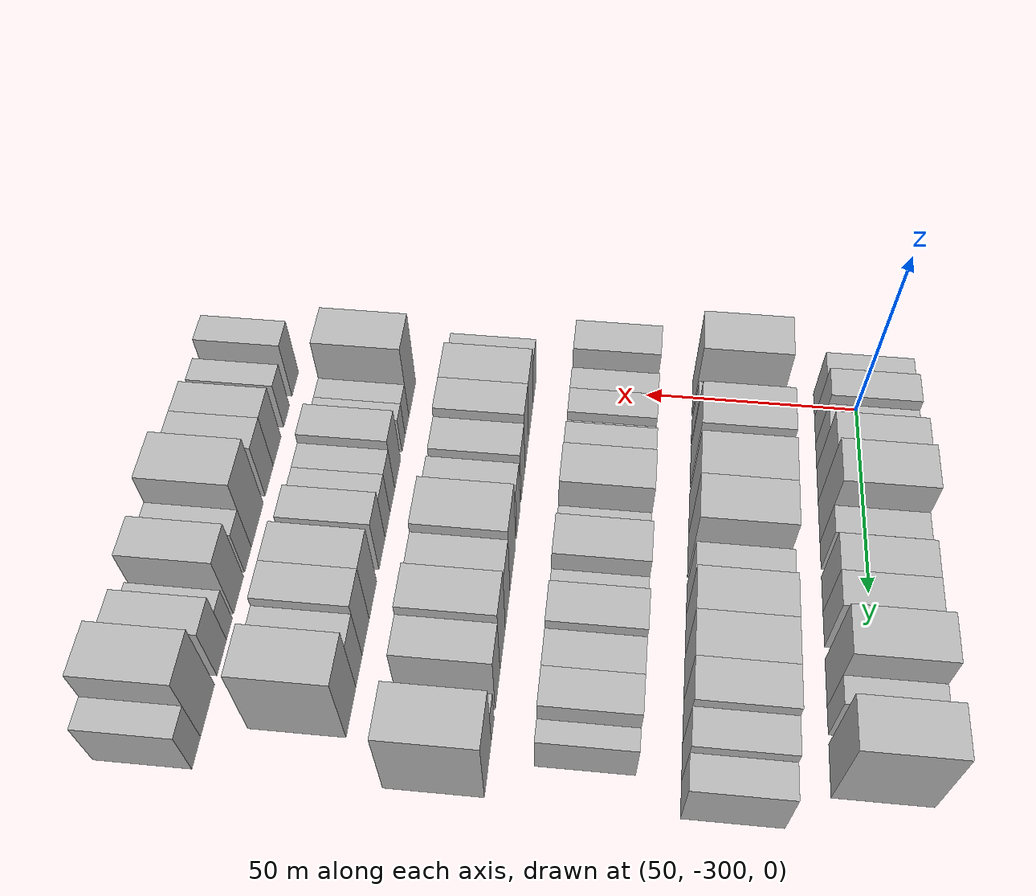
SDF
<sdf version="1.6">
 <world name="default">
  <model name="building_25">
   <static>1</static>
   <pose>50.0000 -300.6534 0 0.000000 0.000000 0.000000</pose>
   <link name="link">
    <pose>0 0 7.50 0 0 0</pose>
    <collision name="collision"><geometry><box><size>20.0000 7.2595 15.0000</size></box></geometry></collision>
    <visual name="visual">
     <cast_shadows>0</cast_shadows>
     <geometry><box><size>20.0000 7.2595 15.0000</size></box></geometry>
     <material>
      <script>
       <uri>model://HANNAS_wall/materials/scripts</uri>
       <uri>model://HANNAS_wall/materials/textures</uri>
       <name>vrc/HANNAS_wall</name>
      </script>
     </material>
    </visual>
   </link>
  </model>
  <model name="building_26">
   <static>1</static>
   <pose>50.0000 -293.0903 0 0.000000 0.000000 0.000000</pose>
   <link name="link">
    <pose>0 0 9.00 0 0 0</pose>
    <collision name="collision"><geometry><box><size>20.0000 7.8667 18.0000</size></box></geometry></collision>
    <visual name="visual">
     <cast_shadows>0</cast_shadows>
     <geometry><box><size>20.0000 7.8667 18.0000</size></box></geometry>
     <material>
      <script>
       <uri>model://HANNAS_wall/materials/scripts</uri>
       <uri>model://HANNAS_wall/materials/textures</uri>
       <name>vrc/HANNAS_wall</name>
      </script>
     </material>
    </visual>
   </link>
  </model>
  <model name="building_27">
   <static>1</static>
   <pose>50.0000 -285.7078 0 0.000000 0.000000 0.000000</pose>
   <link name="link">
    <pose>0 0 7.50 0 0 0</pose>
    <collision name="collision"><geometry><box><size>20.0000 6.8984 15.0000</size></box></geometry></collision>
    <visual name="visual">
     <cast_shadows>0</cast_shadows>
     <geometry><box><size>20.0000 6.8984 15.0000</size></box></geometry>
     <material>
      <script>
       <uri>model://HANNAS_wall/materials/scripts</uri>
       <uri>model://HANNAS_wall/materials/textures</uri>
       <name>vrc/HANNAS_wall</name>
      </script>
     </material>
    </visual>
   </link>
  </model>
  <model name="building_28">
   <static>1</static>
   <pose>50.0000 -277.4978 0 0.000000 0.000000 0.000000</pose>
   <link name="link">
    <pose>0 0 10.50 0 0 0</pose>
    <collision name="collision"><geometry><box><size>20.0000 9.5215 21.0000</size></box></geometry></collision>
    <visual name="visual">
     <cast_shadows>0</cast_shadows>
     <geometry><box><size>20.0000 9.5215 21.0000</size></box></geometry>
     <material>
      <script>
       <uri>model://HANNAS_wall/materials/scripts</uri>
       <uri>model://HANNAS_wall/materials/textures</uri>
       <name>vrc/HANNAS_wall</name>
      </script>
     </material>
    </visual>
   </link>
  </model>
  <model name="building_29">
   <static>1</static>
   <pose>50.0000 -267.2478 0 0.000000 0.000000 0.000000</pose>
   <link name="link">
    <pose>0 0 12.00 0 0 0</pose>
    <collision name="collision"><geometry><box><size>20.0000 10.9785 24.0000</size></box></geometry></collision>
    <visual name="visual">
     <cast_shadows>0</cast_shadows>
     <geometry><box><size>20.0000 10.9785 24.0000</size></box></geometry>
     <material>
      <script>
       <uri>model://HANNAS_wall/materials/scripts</uri>
       <uri>model://HANNAS_wall/materials/textures</uri>
       <name>vrc/HANNAS_wall</name>
      </script>
     </material>
    </visual>
   </link>
  </model>
  <model name="building_30">
   <static>1</static>
   <pose>50.0000 -258.3885 0 0.000000 0.000000 0.000000</pose>
   <link name="link">
    <pose>0 0 7.50 0 0 0</pose>
    <collision name="collision"><geometry><box><size>20.0000 6.7401 15.0000</size></box></geometry></collision>
    <visual name="visual">
     <cast_shadows>0</cast_shadows>
     <geometry><box><size>20.0000 6.7401 15.0000</size></box></geometry>
     <material>
      <script>
       <uri>model://HANNAS_wall/materials/scripts</uri>
       <uri>model://HANNAS_wall/materials/textures</uri>
       <name>vrc/HANNAS_wall</name>
      </script>
     </material>
    </visual>
   </link>
  </model>
  <model name="building_31">
   <static>1</static>
   <pose>50.0000 -248.5982 0 0.000000 0.000000 0.000000</pose>
   <link name="link">
    <pose>0 0 9.00 0 0 0</pose>
    <collision name="collision"><geometry><box><size>20.0000 8.8404 18.0000</size></box></geometry></collision>
    <visual name="visual">
     <cast_shadows>0</cast_shadows>
     <geometry><box><size>20.0000 8.8404 18.0000</size></box></geometry>
     <material>
      <script>
       <uri>model://HANNAS_wall/materials/scripts</uri>
       <uri>model://HANNAS_wall/materials/textures</uri>
       <name>vrc/HANNAS_wall</name>
      </script>
     </material>
    </visual>
   </link>
  </model>
  <model name="building_32">
   <static>1</static>
   <pose>50.0000 -240.0793 0 0.000000 0.000000 0.000000</pose>
   <link name="link">
    <pose>0 0 9.00 0 0 0</pose>
    <collision name="collision"><geometry><box><size>20.0000 8.1975 18.0000</size></box></geometry></collision>
    <visual name="visual">
     <cast_shadows>0</cast_shadows>
     <geometry><box><size>20.0000 8.1975 18.0000</size></box></geometry>
     <material>
      <script>
       <uri>model://HANNAS_wall/materials/scripts</uri>
       <uri>model://HANNAS_wall/materials/textures</uri>
       <name>vrc/HANNAS_wall</name>
      </script>
     </material>
    </visual>
   </link>
  </model>
  <model name="building_33">
   <static>1</static>
   <pose>50.0000 -227.6238 0 0.000000 0.000000 0.000000</pose>
   <link name="link">
    <pose>0 0 12.00 0 0 0</pose>
    <collision name="collision"><geometry><box><size>20.0000 10.7134 24.0000</size></box></geometry></collision>
    <visual name="visual">
     <cast_shadows>0</cast_shadows>
     <geometry><box><size>20.0000 10.7134 24.0000</size></box></geometry>
     <material>
      <script>
       <uri>model://HANNAS_wall/materials/scripts</uri>
       <uri>model://HANNAS_wall/materials/textures</uri>
       <name>vrc/HANNAS_wall</name>
      </script>
     </material>
    </visual>
   </link>
  </model>
  <model name="building_34">
   <static>1</static>
   <pose>50.0000 -219.2456 0 0.000000 0.000000 0.000000</pose>
   <link name="link">
    <pose>0 0 7.50 0 0 0</pose>
    <collision name="collision"><geometry><box><size>20.0000 6.0430 15.0000</size></box></geometry></collision>
    <visual name="visual">
     <cast_shadows>0</cast_shadows>
     <geometry><box><size>20.0000 6.0430 15.0000</size></box></geometry>
     <material>
      <script>
       <uri>model://HANNAS_wall/materials/scripts</uri>
       <uri>model://HANNAS_wall/materials/textures</uri>
       <name>vrc/HANNAS_wall</name>
      </script>
     </material>
    </visual>
   </link>
  </model>
  <model name="building_35">
   <static>1</static>
   <pose>50.0000 -208.6701 0 0.000000 0.000000 0.000000</pose>
   <link name="link">
    <pose>0 0 12.00 0 0 0</pose>
    <collision name="collision"><geometry><box><size>20.0000 11.1080 24.0000</size></box></geometry></collision>
    <visual name="visual">
     <cast_shadows>0</cast_shadows>
     <geometry><box><size>20.0000 11.1080 24.0000</size></box></geometry>
     <material>
      <script>
       <uri>model://HANNAS_wall/materials/scripts</uri>
       <uri>model://HANNAS_wall/materials/textures</uri>
       <name>vrc/HANNAS_wall</name>
      </script>
     </material>
    </visual>
   </link>
  </model>
  <model name="building_135">
   <static>1</static>
   <pose>79.0000 -300.3705 0 0.000000 0.000000 0.000000</pose>
   <link name="link">
    <pose>0 0 12.00 0 0 0</pose>
    <collision name="collision"><geometry><box><size>20.0000 11.1711 24.0000</size></box></geometry></collision>
    <visual name="visual">
     <cast_shadows>0</cast_shadows>
     <geometry><box><size>20.0000 11.1711 24.0000</size></box></geometry>
     <material>
      <script>
       <uri>model://HANNAS_wall/materials/scripts</uri>
       <uri>model://HANNAS_wall/materials/textures</uri>
       <name>vrc/HANNAS_wall</name>
      </script>
     </material>
    </visual>
   </link>
  </model>
  <model name="building_136">
   <static>1</static>
   <pose>79.0000 -289.6058 0 0.000000 0.000000 0.000000</pose>
   <link name="link">
    <pose>0 0 7.50 0 0 0</pose>
    <collision name="collision"><geometry><box><size>20.0000 6.3584 15.0000</size></box></geometry></collision>
    <visual name="visual">
     <cast_shadows>0</cast_shadows>
     <geometry><box><size>20.0000 6.3584 15.0000</size></box></geometry>
     <material>
      <script>
       <uri>model://HANNAS_wall/materials/scripts</uri>
       <uri>model://HANNAS_wall/materials/textures</uri>
       <name>vrc/HANNAS_wall</name>
      </script>
     </material>
    </visual>
   </link>
  </model>
  <model name="building_137">
   <static>1</static>
   <pose>79.0000 -279.7051 0 0.000000 0.000000 0.000000</pose>
   <link name="link">
    <pose>0 0 12.00 0 0 0</pose>
    <collision name="collision"><geometry><box><size>20.0000 11.4429 24.0000</size></box></geometry></collision>
    <visual name="visual">
     <cast_shadows>0</cast_shadows>
     <geometry><box><size>20.0000 11.4429 24.0000</size></box></geometry>
     <material>
      <script>
       <uri>model://HANNAS_wall/materials/scripts</uri>
       <uri>model://HANNAS_wall/materials/textures</uri>
       <name>vrc/HANNAS_wall</name>
      </script>
     </material>
    </visual>
   </link>
  </model>
  <model name="building_138">
   <static>1</static>
   <pose>79.0000 -266.4589 0 0.000000 0.000000 0.000000</pose>
   <link name="link">
    <pose>0 0 12.00 0 0 0</pose>
    <collision name="collision"><geometry><box><size>20.0000 11.0495 24.0000</size></box></geometry></collision>
    <visual name="visual">
     <cast_shadows>0</cast_shadows>
     <geometry><box><size>20.0000 11.0495 24.0000</size></box></geometry>
     <material>
      <script>
       <uri>model://HANNAS_wall/materials/scripts</uri>
       <uri>model://HANNAS_wall/materials/textures</uri>
       <name>vrc/HANNAS_wall</name>
      </script>
     </material>
    </visual>
   </link>
  </model>
  <model name="building_139">
   <static>1</static>
   <pose>79.0000 -255.4884 0 0.000000 0.000000 0.000000</pose>
   <link name="link">
    <pose>0 0 12.00 0 0 0</pose>
    <collision name="collision"><geometry><box><size>20.0000 10.8915 24.0000</size></box></geometry></collision>
    <visual name="visual">
     <cast_shadows>0</cast_shadows>
     <geometry><box><size>20.0000 10.8915 24.0000</size></box></geometry>
     <material>
      <script>
       <uri>model://HANNAS_wall/materials/scripts</uri>
       <uri>model://HANNAS_wall/materials/textures</uri>
       <name>vrc/HANNAS_wall</name>
      </script>
     </material>
    </visual>
   </link>
  </model>
  <model name="building_140">
   <static>1</static>
   <pose>79.0000 -244.3707 0 0.000000 0.000000 0.000000</pose>
   <link name="link">
    <pose>0 0 9.00 0 0 0</pose>
    <collision name="collision"><geometry><box><size>20.0000 7.3439 18.0000</size></box></geometry></collision>
    <visual name="visual">
     <cast_shadows>0</cast_shadows>
     <geometry><box><size>20.0000 7.3439 18.0000</size></box></geometry>
     <material>
      <script>
       <uri>model://HANNAS_wall/materials/scripts</uri>
       <uri>model://HANNAS_wall/materials/textures</uri>
       <name>vrc/HANNAS_wall</name>
      </script>
     </material>
    </visual>
   </link>
  </model>
  <model name="building_141">
   <static>1</static>
   <pose>79.0000 -235.7660 0 0.000000 0.000000 0.000000</pose>
   <link name="link">
    <pose>0 0 10.50 0 0 0</pose>
    <collision name="collision"><geometry><box><size>20.0000 9.8655 21.0000</size></box></geometry></collision>
    <visual name="visual">
     <cast_shadows>0</cast_shadows>
     <geometry><box><size>20.0000 9.8655 21.0000</size></box></geometry>
     <material>
      <script>
       <uri>model://HANNAS_wall/materials/scripts</uri>
       <uri>model://HANNAS_wall/materials/textures</uri>
       <name>vrc/HANNAS_wall</name>
      </script>
     </material>
    </visual>
   </link>
  </model>
  <model name="building_142">
   <static>1</static>
   <pose>79.0000 -225.7892 0 0.000000 0.000000 0.000000</pose>
   <link name="link">
    <pose>0 0 10.50 0 0 0</pose>
    <collision name="collision"><geometry><box><size>20.0000 10.0881 21.0000</size></box></geometry></collision>
    <visual name="visual">
     <cast_shadows>0</cast_shadows>
     <geometry><box><size>20.0000 10.0881 21.0000</size></box></geometry>
     <material>
      <script>
       <uri>model://HANNAS_wall/materials/scripts</uri>
       <uri>model://HANNAS_wall/materials/textures</uri>
       <name>vrc/HANNAS_wall</name>
      </script>
     </material>
    </visual>
   </link>
  </model>
  <model name="building_143">
   <static>1</static>
   <pose>79.0000 -216.1794 0 0.000000 0.000000 0.000000</pose>
   <link name="link">
    <pose>0 0 10.50 0 0 0</pose>
    <collision name="collision"><geometry><box><size>20.0000 9.1317 21.0000</size></box></geometry></collision>
    <visual name="visual">
     <cast_shadows>0</cast_shadows>
     <geometry><box><size>20.0000 9.1317 21.0000</size></box></geometry>
     <material>
      <script>
       <uri>model://HANNAS_wall/materials/scripts</uri>
       <uri>model://HANNAS_wall/materials/textures</uri>
       <name>vrc/HANNAS_wall</name>
      </script>
     </material>
    </visual>
   </link>
  </model>
  <model name="building_144">
   <static>1</static>
   <pose>79.0000 -207.6266 0 0.000000 0.000000 0.000000</pose>
   <link name="link">
    <pose>0 0 9.00 0 0 0</pose>
    <collision name="collision"><geometry><box><size>20.0000 7.9738 18.0000</size></box></geometry></collision>
    <visual name="visual">
     <cast_shadows>0</cast_shadows>
     <geometry><box><size>20.0000 7.9738 18.0000</size></box></geometry>
     <material>
      <script>
       <uri>model://HANNAS_wall/materials/scripts</uri>
       <uri>model://HANNAS_wall/materials/textures</uri>
       <name>vrc/HANNAS_wall</name>
      </script>
     </material>
    </visual>
   </link>
  </model>
  <model name="building_145">
   <static>1</static>
   <pose>79.0000 -199.9087 0 0.000000 0.000000 0.000000</pose>
   <link name="link">
    <pose>0 0 7.50 0 0 0</pose>
    <collision name="collision"><geometry><box><size>20.0000 7.4618 15.0000</size></box></geometry></collision>
    <visual name="visual">
     <cast_shadows>0</cast_shadows>
     <geometry><box><size>20.0000 7.4618 15.0000</size></box></geometry>
     <material>
      <script>
       <uri>model://HANNAS_wall/materials/scripts</uri>
       <uri>model://HANNAS_wall/materials/textures</uri>
       <name>vrc/HANNAS_wall</name>
      </script>
     </material>
    </visual>
   </link>
  </model>
  <model name="building_246">
   <static>1</static>
   <pose>108.0000 -301.6087 0 0.000000 0.000000 0.000000</pose>
   <link name="link">
    <pose>0 0 9.00 0 0 0</pose>
    <collision name="collision"><geometry><box><size>20.0000 8.7364 18.0000</size></box></geometry></collision>
    <visual name="visual">
     <cast_shadows>0</cast_shadows>
     <geometry><box><size>20.0000 8.7364 18.0000</size></box></geometry>
     <material>
      <script>
       <uri>model://HANNAS_wall/materials/scripts</uri>
       <uri>model://HANNAS_wall/materials/textures</uri>
       <name>vrc/HANNAS_wall</name>
      </script>
     </material>
    </visual>
   </link>
  </model>
  <model name="building_247">
   <static>1</static>
   <pose>108.0000 -291.2242 0 0.000000 0.000000 0.000000</pose>
   <link name="link">
    <pose>0 0 7.50 0 0 0</pose>
    <collision name="collision"><geometry><box><size>20.0000 6.0327 15.0000</size></box></geometry></collision>
    <visual name="visual">
     <cast_shadows>0</cast_shadows>
     <geometry><box><size>20.0000 6.0327 15.0000</size></box></geometry>
     <material>
      <script>
       <uri>model://HANNAS_wall/materials/scripts</uri>
       <uri>model://HANNAS_wall/materials/textures</uri>
       <name>vrc/HANNAS_wall</name>
      </script>
     </material>
    </visual>
   </link>
  </model>
  <model name="building_248">
   <static>1</static>
   <pose>108.0000 -284.7548 0 0.000000 0.000000 0.000000</pose>
   <link name="link">
    <pose>0 0 7.50 0 0 0</pose>
    <collision name="collision"><geometry><box><size>20.0000 6.9060 15.0000</size></box></geometry></collision>
    <visual name="visual">
     <cast_shadows>0</cast_shadows>
     <geometry><box><size>20.0000 6.9060 15.0000</size></box></geometry>
     <material>
      <script>
       <uri>model://HANNAS_wall/materials/scripts</uri>
       <uri>model://HANNAS_wall/materials/textures</uri>
       <name>vrc/HANNAS_wall</name>
      </script>
     </material>
    </visual>
   </link>
  </model>
  <model name="building_249">
   <static>1</static>
   <pose>108.0000 -278.7628 0 0.000000 0.000000 0.000000</pose>
   <link name="link">
    <pose>0 0 6.00 0 0 0</pose>
    <collision name="collision"><geometry><box><size>20.0000 5.0780 12.0000</size></box></geometry></collision>
    <visual name="visual">
     <cast_shadows>0</cast_shadows>
     <geometry><box><size>20.0000 5.0780 12.0000</size></box></geometry>
     <material>
      <script>
       <uri>model://HANNAS_wall/materials/scripts</uri>
       <uri>model://HANNAS_wall/materials/textures</uri>
       <name>vrc/HANNAS_wall</name>
      </script>
     </material>
    </visual>
   </link>
  </model>
  <model name="building_250">
   <static>1</static>
   <pose>108.0000 -272.2303 0 0.000000 0.000000 0.000000</pose>
   <link name="link">
    <pose>0 0 9.00 0 0 0</pose>
    <collision name="collision"><geometry><box><size>20.0000 7.9870 18.0000</size></box></geometry></collision>
    <visual name="visual">
     <cast_shadows>0</cast_shadows>
     <geometry><box><size>20.0000 7.9870 18.0000</size></box></geometry>
     <material>
      <script>
       <uri>model://HANNAS_wall/materials/scripts</uri>
       <uri>model://HANNAS_wall/materials/textures</uri>
       <name>vrc/HANNAS_wall</name>
      </script>
     </material>
    </visual>
   </link>
  </model>
  <model name="building_251">
   <static>1</static>
   <pose>108.0000 -263.1818 0 0.000000 0.000000 0.000000</pose>
   <link name="link">
    <pose>0 0 10.50 0 0 0</pose>
    <collision name="collision"><geometry><box><size>20.0000 10.1101 21.0000</size></box></geometry></collision>
    <visual name="visual">
     <cast_shadows>0</cast_shadows>
     <geometry><box><size>20.0000 10.1101 21.0000</size></box></geometry>
     <material>
      <script>
       <uri>model://HANNAS_wall/materials/scripts</uri>
       <uri>model://HANNAS_wall/materials/textures</uri>
       <name>vrc/HANNAS_wall</name>
      </script>
     </material>
    </visual>
   </link>
  </model>
  <model name="building_252">
   <static>1</static>
   <pose>108.0000 -255.1380 0 0.000000 0.000000 0.000000</pose>
   <link name="link">
    <pose>0 0 6.00 0 0 0</pose>
    <collision name="collision"><geometry><box><size>20.0000 5.9775 12.0000</size></box></geometry></collision>
    <visual name="visual">
     <cast_shadows>0</cast_shadows>
     <geometry><box><size>20.0000 5.9775 12.0000</size></box></geometry>
     <material>
      <script>
       <uri>model://HANNAS_wall/materials/scripts</uri>
       <uri>model://HANNAS_wall/materials/textures</uri>
       <name>vrc/HANNAS_wall</name>
      </script>
     </material>
    </visual>
   </link>
  </model>
  <model name="building_253">
   <static>1</static>
   <pose>108.0000 -245.3372 0 0.000000 0.000000 0.000000</pose>
   <link name="link">
    <pose>0 0 10.50 0 0 0</pose>
    <collision name="collision"><geometry><box><size>20.0000 9.6242 21.0000</size></box></geometry></collision>
    <visual name="visual">
     <cast_shadows>0</cast_shadows>
     <geometry><box><size>20.0000 9.6242 21.0000</size></box></geometry>
     <material>
      <script>
       <uri>model://HANNAS_wall/materials/scripts</uri>
       <uri>model://HANNAS_wall/materials/textures</uri>
       <name>vrc/HANNAS_wall</name>
      </script>
     </material>
    </visual>
   </link>
  </model>
  <model name="building_254">
   <static>1</static>
   <pose>108.0000 -237.4232 0 0.000000 0.000000 0.000000</pose>
   <link name="link">
    <pose>0 0 7.50 0 0 0</pose>
    <collision name="collision"><geometry><box><size>20.0000 6.2038 15.0000</size></box></geometry></collision>
    <visual name="visual">
     <cast_shadows>0</cast_shadows>
     <geometry><box><size>20.0000 6.2038 15.0000</size></box></geometry>
     <material>
      <script>
       <uri>model://HANNAS_wall/materials/scripts</uri>
       <uri>model://HANNAS_wall/materials/textures</uri>
       <name>vrc/HANNAS_wall</name>
      </script>
     </material>
    </visual>
   </link>
  </model>
  <model name="building_255">
   <static>1</static>
   <pose>108.0000 -229.8095 0 0.000000 0.000000 0.000000</pose>
   <link name="link">
    <pose>0 0 10.50 0 0 0</pose>
    <collision name="collision"><geometry><box><size>20.0000 9.0236 21.0000</size></box></geometry></collision>
    <visual name="visual">
     <cast_shadows>0</cast_shadows>
     <geometry><box><size>20.0000 9.0236 21.0000</size></box></geometry>
     <material>
      <script>
       <uri>model://HANNAS_wall/materials/scripts</uri>
       <uri>model://HANNAS_wall/materials/textures</uri>
       <name>vrc/HANNAS_wall</name>
      </script>
     </material>
    </visual>
   </link>
  </model>
  <model name="building_256">
   <static>1</static>
   <pose>108.0000 -221.3011 0 0.000000 0.000000 0.000000</pose>
   <link name="link">
    <pose>0 0 9.00 0 0 0</pose>
    <collision name="collision"><geometry><box><size>20.0000 7.9932 18.0000</size></box></geometry></collision>
    <visual name="visual">
     <cast_shadows>0</cast_shadows>
     <geometry><box><size>20.0000 7.9932 18.0000</size></box></geometry>
     <material>
      <script>
       <uri>model://HANNAS_wall/materials/scripts</uri>
       <uri>model://HANNAS_wall/materials/textures</uri>
       <name>vrc/HANNAS_wall</name>
      </script>
     </material>
    </visual>
   </link>
  </model>
  <model name="building_257">
   <static>1</static>
   <pose>108.0000 -213.1032 0 0.000000 0.000000 0.000000</pose>
   <link name="link">
    <pose>0 0 9.00 0 0 0</pose>
    <collision name="collision"><geometry><box><size>20.0000 8.4025 18.0000</size></box></geometry></collision>
    <visual name="visual">
     <cast_shadows>0</cast_shadows>
     <geometry><box><size>20.0000 8.4025 18.0000</size></box></geometry>
     <material>
      <script>
       <uri>model://HANNAS_wall/materials/scripts</uri>
       <uri>model://HANNAS_wall/materials/textures</uri>
       <name>vrc/HANNAS_wall</name>
      </script>
     </material>
    </visual>
   </link>
  </model>
  <model name="building_258">
   <static>1</static>
   <pose>108.0000 -206.4735 0 0.000000 0.000000 0.000000</pose>
   <link name="link">
    <pose>0 0 6.00 0 0 0</pose>
    <collision name="collision"><geometry><box><size>20.0000 4.8570 12.0000</size></box></geometry></collision>
    <visual name="visual">
     <cast_shadows>0</cast_shadows>
     <geometry><box><size>20.0000 4.8570 12.0000</size></box></geometry>
     <material>
      <script>
       <uri>model://HANNAS_wall/materials/scripts</uri>
       <uri>model://HANNAS_wall/materials/textures</uri>
       <name>vrc/HANNAS_wall</name>
      </script>
     </material>
    </visual>
   </link>
  </model>
  <model name="building_365">
   <static>1</static>
   <pose>137.0000 -298.1875 0 0.000000 0.000000 0.000000</pose>
   <link name="link">
    <pose>0 0 7.50 0 0 0</pose>
    <collision name="collision"><geometry><box><size>20.0000 7.2513 15.0000</size></box></geometry></collision>
    <visual name="visual">
     <cast_shadows>0</cast_shadows>
     <geometry><box><size>20.0000 7.2513 15.0000</size></box></geometry>
     <material>
      <script>
       <uri>model://HANNAS_wall/materials/scripts</uri>
       <uri>model://HANNAS_wall/materials/textures</uri>
       <name>vrc/HANNAS_wall</name>
      </script>
     </material>
    </visual>
   </link>
  </model>
  <model name="building_366">
   <static>1</static>
   <pose>137.0000 -288.5127 0 0.000000 0.000000 0.000000</pose>
   <link name="link">
    <pose>0 0 10.50 0 0 0</pose>
    <collision name="collision"><geometry><box><size>20.0000 10.0982 21.0000</size></box></geometry></collision>
    <visual name="visual">
     <cast_shadows>0</cast_shadows>
     <geometry><box><size>20.0000 10.0982 21.0000</size></box></geometry>
     <material>
      <script>
       <uri>model://HANNAS_wall/materials/scripts</uri>
       <uri>model://HANNAS_wall/materials/textures</uri>
       <name>vrc/HANNAS_wall</name>
      </script>
     </material>
    </visual>
   </link>
  </model>
  <model name="building_367">
   <static>1</static>
   <pose>137.0000 -279.0938 0 0.000000 0.000000 0.000000</pose>
   <link name="link">
    <pose>0 0 10.50 0 0 0</pose>
    <collision name="collision"><geometry><box><size>20.0000 8.7396 21.0000</size></box></geometry></collision>
    <visual name="visual">
     <cast_shadows>0</cast_shadows>
     <geometry><box><size>20.0000 8.7396 21.0000</size></box></geometry>
     <material>
      <script>
       <uri>model://HANNAS_wall/materials/scripts</uri>
       <uri>model://HANNAS_wall/materials/textures</uri>
       <name>vrc/HANNAS_wall</name>
      </script>
     </material>
    </visual>
   </link>
  </model>
  <model name="building_368">
   <static>1</static>
   <pose>137.0000 -270.3737 0 0.000000 0.000000 0.000000</pose>
   <link name="link">
    <pose>0 0 9.00 0 0 0</pose>
    <collision name="collision"><geometry><box><size>20.0000 8.7004 18.0000</size></box></geometry></collision>
    <visual name="visual">
     <cast_shadows>0</cast_shadows>
     <geometry><box><size>20.0000 8.7004 18.0000</size></box></geometry>
     <material>
      <script>
       <uri>model://HANNAS_wall/materials/scripts</uri>
       <uri>model://HANNAS_wall/materials/textures</uri>
       <name>vrc/HANNAS_wall</name>
      </script>
     </material>
    </visual>
   </link>
  </model>
  <model name="building_369">
   <static>1</static>
   <pose>137.0000 -260.2251 0 0.000000 0.000000 0.000000</pose>
   <link name="link">
    <pose>0 0 9.00 0 0 0</pose>
    <collision name="collision"><geometry><box><size>20.0000 7.5970 18.0000</size></box></geometry></collision>
    <visual name="visual">
     <cast_shadows>0</cast_shadows>
     <geometry><box><size>20.0000 7.5970 18.0000</size></box></geometry>
     <material>
      <script>
       <uri>model://HANNAS_wall/materials/scripts</uri>
       <uri>model://HANNAS_wall/materials/textures</uri>
       <name>vrc/HANNAS_wall</name>
      </script>
     </material>
    </visual>
   </link>
  </model>
  <model name="building_370">
   <static>1</static>
   <pose>137.0000 -248.6318 0 0.000000 0.000000 0.000000</pose>
   <link name="link">
    <pose>0 0 12.00 0 0 0</pose>
    <collision name="collision"><geometry><box><size>20.0000 11.5896 24.0000</size></box></geometry></collision>
    <visual name="visual">
     <cast_shadows>0</cast_shadows>
     <geometry><box><size>20.0000 11.5896 24.0000</size></box></geometry>
     <material>
      <script>
       <uri>model://HANNAS_wall/materials/scripts</uri>
       <uri>model://HANNAS_wall/materials/textures</uri>
       <name>vrc/HANNAS_wall</name>
      </script>
     </material>
    </visual>
   </link>
  </model>
  <model name="building_371">
   <static>1</static>
   <pose>137.0000 -238.2595 0 0.000000 0.000000 0.000000</pose>
   <link name="link">
    <pose>0 0 10.50 0 0 0</pose>
    <collision name="collision"><geometry><box><size>20.0000 9.1548 21.0000</size></box></geometry></collision>
    <visual name="visual">
     <cast_shadows>0</cast_shadows>
     <geometry><box><size>20.0000 9.1548 21.0000</size></box></geometry>
     <material>
      <script>
       <uri>model://HANNAS_wall/materials/scripts</uri>
       <uri>model://HANNAS_wall/materials/textures</uri>
       <name>vrc/HANNAS_wall</name>
      </script>
     </material>
    </visual>
   </link>
  </model>
  <model name="building_372">
   <static>1</static>
   <pose>137.0000 -228.7739 0 0.000000 0.000000 0.000000</pose>
   <link name="link">
    <pose>0 0 12.00 0 0 0</pose>
    <collision name="collision"><geometry><box><size>20.0000 9.8164 24.0000</size></box></geometry></collision>
    <visual name="visual">
     <cast_shadows>0</cast_shadows>
     <geometry><box><size>20.0000 9.8164 24.0000</size></box></geometry>
     <material>
      <script>
       <uri>model://HANNAS_wall/materials/scripts</uri>
       <uri>model://HANNAS_wall/materials/textures</uri>
       <name>vrc/HANNAS_wall</name>
      </script>
     </material>
    </visual>
   </link>
  </model>
  <model name="building_373">
   <static>1</static>
   <pose>137.0000 -219.4963 0 0.000000 0.000000 0.000000</pose>
   <link name="link">
    <pose>0 0 10.50 0 0 0</pose>
    <collision name="collision"><geometry><box><size>20.0000 8.7388 21.0000</size></box></geometry></collision>
    <visual name="visual">
     <cast_shadows>0</cast_shadows>
     <geometry><box><size>20.0000 8.7388 21.0000</size></box></geometry>
     <material>
      <script>
       <uri>model://HANNAS_wall/materials/scripts</uri>
       <uri>model://HANNAS_wall/materials/textures</uri>
       <name>vrc/HANNAS_wall</name>
      </script>
     </material>
    </visual>
   </link>
  </model>
  <model name="building_374">
   <static>1</static>
   <pose>137.0000 -210.7140 0 0.000000 0.000000 0.000000</pose>
   <link name="link">
    <pose>0 0 6.00 0 0 0</pose>
    <collision name="collision"><geometry><box><size>20.0000 4.8258 12.0000</size></box></geometry></collision>
    <visual name="visual">
     <cast_shadows>0</cast_shadows>
     <geometry><box><size>20.0000 4.8258 12.0000</size></box></geometry>
     <material>
      <script>
       <uri>model://HANNAS_wall/materials/scripts</uri>
       <uri>model://HANNAS_wall/materials/textures</uri>
       <name>vrc/HANNAS_wall</name>
      </script>
     </material>
    </visual>
   </link>
  </model>
  <model name="building_375">
   <static>1</static>
   <pose>137.0000 -202.5214 0 0.000000 0.000000 0.000000</pose>
   <link name="link">
    <pose>0 0 12.00 0 0 0</pose>
    <collision name="collision"><geometry><box><size>20.0000 11.5594 24.0000</size></box></geometry></collision>
    <visual name="visual">
     <cast_shadows>0</cast_shadows>
     <geometry><box><size>20.0000 11.5594 24.0000</size></box></geometry>
     <material>
      <script>
       <uri>model://HANNAS_wall/materials/scripts</uri>
       <uri>model://HANNAS_wall/materials/textures</uri>
       <name>vrc/HANNAS_wall</name>
      </script>
     </material>
    </visual>
   </link>
  </model>
  <model name="building_476">
   <static>1</static>
   <pose>166.0000 -293.2601 0 0.000000 0.000000 0.000000</pose>
   <link name="link">
    <pose>0 0 12.00 0 0 0</pose>
    <collision name="collision"><geometry><box><size>20.0000 10.6875 24.0000</size></box></geometry></collision>
    <visual name="visual">
     <cast_shadows>0</cast_shadows>
     <geometry><box><size>20.0000 10.6875 24.0000</size></box></geometry>
     <material>
      <script>
       <uri>model://HANNAS_wall/materials/scripts</uri>
       <uri>model://HANNAS_wall/materials/textures</uri>
       <name>vrc/HANNAS_wall</name>
      </script>
     </material>
    </visual>
   </link>
  </model>
  <model name="building_477">
   <static>1</static>
   <pose>166.0000 -285.0969 0 0.000000 0.000000 0.000000</pose>
   <link name="link">
    <pose>0 0 6.00 0 0 0</pose>
    <collision name="collision"><geometry><box><size>20.0000 5.6389 12.0000</size></box></geometry></collision>
    <visual name="visual">
     <cast_shadows>0</cast_shadows>
     <geometry><box><size>20.0000 5.6389 12.0000</size></box></geometry>
     <material>
      <script>
       <uri>model://HANNAS_wall/materials/scripts</uri>
       <uri>model://HANNAS_wall/materials/textures</uri>
       <name>vrc/HANNAS_wall</name>
      </script>
     </material>
    </visual>
   </link>
  </model>
  <model name="building_478">
   <static>1</static>
   <pose>166.0000 -279.8763 0 0.000000 0.000000 0.000000</pose>
   <link name="link">
    <pose>0 0 6.00 0 0 0</pose>
    <collision name="collision"><geometry><box><size>20.0000 4.8022 12.0000</size></box></geometry></collision>
    <visual name="visual">
     <cast_shadows>0</cast_shadows>
     <geometry><box><size>20.0000 4.8022 12.0000</size></box></geometry>
     <material>
      <script>
       <uri>model://HANNAS_wall/materials/scripts</uri>
       <uri>model://HANNAS_wall/materials/textures</uri>
       <name>vrc/HANNAS_wall</name>
      </script>
     </material>
    </visual>
   </link>
  </model>
  <model name="building_479">
   <static>1</static>
   <pose>166.0000 -271.2401 0 0.000000 0.000000 0.000000</pose>
   <link name="link">
    <pose>0 0 9.00 0 0 0</pose>
    <collision name="collision"><geometry><box><size>20.0000 8.4702 18.0000</size></box></geometry></collision>
    <visual name="visual">
     <cast_shadows>0</cast_shadows>
     <geometry><box><size>20.0000 8.4702 18.0000</size></box></geometry>
     <material>
      <script>
       <uri>model://HANNAS_wall/materials/scripts</uri>
       <uri>model://HANNAS_wall/materials/textures</uri>
       <name>vrc/HANNAS_wall</name>
      </script>
     </material>
    </visual>
   </link>
  </model>
  <model name="building_480">
   <static>1</static>
   <pose>166.0000 -263.7258 0 0.000000 0.000000 0.000000</pose>
   <link name="link">
    <pose>0 0 7.50 0 0 0</pose>
    <collision name="collision"><geometry><box><size>20.0000 6.5583 15.0000</size></box></geometry></collision>
    <visual name="visual">
     <cast_shadows>0</cast_shadows>
     <geometry><box><size>20.0000 6.5583 15.0000</size></box></geometry>
     <material>
      <script>
       <uri>model://HANNAS_wall/materials/scripts</uri>
       <uri>model://HANNAS_wall/materials/textures</uri>
       <name>vrc/HANNAS_wall</name>
      </script>
     </material>
    </visual>
   </link>
  </model>
  <model name="building_481">
   <static>1</static>
   <pose>166.0000 -257.0633 0 0.000000 0.000000 0.000000</pose>
   <link name="link">
    <pose>0 0 7.50 0 0 0</pose>
    <collision name="collision"><geometry><box><size>20.0000 6.7669 15.0000</size></box></geometry></collision>
    <visual name="visual">
     <cast_shadows>0</cast_shadows>
     <geometry><box><size>20.0000 6.7669 15.0000</size></box></geometry>
     <material>
      <script>
       <uri>model://HANNAS_wall/materials/scripts</uri>
       <uri>model://HANNAS_wall/materials/textures</uri>
       <name>vrc/HANNAS_wall</name>
      </script>
     </material>
    </visual>
   </link>
  </model>
  <model name="building_482">
   <static>1</static>
   <pose>166.0000 -249.6288 0 0.000000 0.000000 0.000000</pose>
   <link name="link">
    <pose>0 0 9.00 0 0 0</pose>
    <collision name="collision"><geometry><box><size>20.0000 8.1021 18.0000</size></box></geometry></collision>
    <visual name="visual">
     <cast_shadows>0</cast_shadows>
     <geometry><box><size>20.0000 8.1021 18.0000</size></box></geometry>
     <material>
      <script>
       <uri>model://HANNAS_wall/materials/scripts</uri>
       <uri>model://HANNAS_wall/materials/textures</uri>
       <name>vrc/HANNAS_wall</name>
      </script>
     </material>
    </visual>
   </link>
  </model>
  <model name="building_483">
   <static>1</static>
   <pose>166.0000 -237.9270 0 0.000000 0.000000 0.000000</pose>
   <link name="link">
    <pose>0 0 10.50 0 0 0</pose>
    <collision name="collision"><geometry><box><size>20.0000 9.3014 21.0000</size></box></geometry></collision>
    <visual name="visual">
     <cast_shadows>0</cast_shadows>
     <geometry><box><size>20.0000 9.3014 21.0000</size></box></geometry>
     <material>
      <script>
       <uri>model://HANNAS_wall/materials/scripts</uri>
       <uri>model://HANNAS_wall/materials/textures</uri>
       <name>vrc/HANNAS_wall</name>
      </script>
     </material>
    </visual>
   </link>
  </model>
  <model name="building_484">
   <static>1</static>
   <pose>166.0000 -228.9842 0 0.000000 0.000000 0.000000</pose>
   <link name="link">
    <pose>0 0 10.50 0 0 0</pose>
    <collision name="collision"><geometry><box><size>20.0000 8.5843 21.0000</size></box></geometry></collision>
    <visual name="visual">
     <cast_shadows>0</cast_shadows>
     <geometry><box><size>20.0000 8.5843 21.0000</size></box></geometry>
     <material>
      <script>
       <uri>model://HANNAS_wall/materials/scripts</uri>
       <uri>model://HANNAS_wall/materials/textures</uri>
       <name>vrc/HANNAS_wall</name>
      </script>
     </material>
    </visual>
   </link>
  </model>
  <model name="building_485">
   <static>1</static>
   <pose>166.0000 -221.0494 0 0.000000 0.000000 0.000000</pose>
   <link name="link">
    <pose>0 0 9.00 0 0 0</pose>
    <collision name="collision"><geometry><box><size>20.0000 7.2853 18.0000</size></box></geometry></collision>
    <visual name="visual">
     <cast_shadows>0</cast_shadows>
     <geometry><box><size>20.0000 7.2853 18.0000</size></box></geometry>
     <material>
      <script>
       <uri>model://HANNAS_wall/materials/scripts</uri>
       <uri>model://HANNAS_wall/materials/textures</uri>
       <name>vrc/HANNAS_wall</name>
      </script>
     </material>
    </visual>
   </link>
  </model>
  <model name="building_486">
   <static>1</static>
   <pose>166.0000 -211.9046 0 0.000000 0.000000 0.000000</pose>
   <link name="link">
    <pose>0 0 12.00 0 0 0</pose>
    <collision name="collision"><geometry><box><size>20.0000 11.0043 24.0000</size></box></geometry></collision>
    <visual name="visual">
     <cast_shadows>0</cast_shadows>
     <geometry><box><size>20.0000 11.0043 24.0000</size></box></geometry>
     <material>
      <script>
       <uri>model://HANNAS_wall/materials/scripts</uri>
       <uri>model://HANNAS_wall/materials/textures</uri>
       <name>vrc/HANNAS_wall</name>
      </script>
     </material>
    </visual>
   </link>
  </model>
  <model name="building_591">
   <static>1</static>
   <pose>195.0000 -295.3011 0 0.000000 0.000000 0.000000</pose>
   <link name="link">
    <pose>0 0 9.00 0 0 0</pose>
    <collision name="collision"><geometry><box><size>20.0000 7.5584 18.0000</size></box></geometry></collision>
    <visual name="visual">
     <cast_shadows>0</cast_shadows>
     <geometry><box><size>20.0000 7.5584 18.0000</size></box></geometry>
     <material>
      <script>
       <uri>model://HANNAS_wall/materials/scripts</uri>
       <uri>model://HANNAS_wall/materials/textures</uri>
       <name>vrc/HANNAS_wall</name>
      </script>
     </material>
    </visual>
   </link>
  </model>
  <model name="building_592">
   <static>1</static>
   <pose>195.0000 -285.3228 0 0.000000 0.000000 0.000000</pose>
   <link name="link">
    <pose>0 0 7.50 0 0 0</pose>
    <collision name="collision"><geometry><box><size>20.0000 6.3982 15.0000</size></box></geometry></collision>
    <visual name="visual">
     <cast_shadows>0</cast_shadows>
     <geometry><box><size>20.0000 6.3982 15.0000</size></box></geometry>
     <material>
      <script>
       <uri>model://HANNAS_wall/materials/scripts</uri>
       <uri>model://HANNAS_wall/materials/textures</uri>
       <name>vrc/HANNAS_wall</name>
      </script>
     </material>
    </visual>
   </link>
  </model>
  <model name="building_593">
   <static>1</static>
   <pose>195.0000 -274.9096 0 0.000000 0.000000 0.000000</pose>
   <link name="link">
    <pose>0 0 9.00 0 0 0</pose>
    <collision name="collision"><geometry><box><size>20.0000 8.4281 18.0000</size></box></geometry></collision>
    <visual name="visual">
     <cast_shadows>0</cast_shadows>
     <geometry><box><size>20.0000 8.4281 18.0000</size></box></geometry>
     <material>
      <script>
       <uri>model://HANNAS_wall/materials/scripts</uri>
       <uri>model://HANNAS_wall/materials/textures</uri>
       <name>vrc/HANNAS_wall</name>
      </script>
     </material>
    </visual>
   </link>
  </model>
  <model name="building_594">
   <static>1</static>
   <pose>195.0000 -266.5155 0 0.000000 0.000000 0.000000</pose>
   <link name="link">
    <pose>0 0 9.00 0 0 0</pose>
    <collision name="collision"><geometry><box><size>20.0000 8.3601 18.0000</size></box></geometry></collision>
    <visual name="visual">
     <cast_shadows>0</cast_shadows>
     <geometry><box><size>20.0000 8.3601 18.0000</size></box></geometry>
     <material>
      <script>
       <uri>model://HANNAS_wall/materials/scripts</uri>
       <uri>model://HANNAS_wall/materials/textures</uri>
       <name>vrc/HANNAS_wall</name>
      </script>
     </material>
    </visual>
   </link>
  </model>
  <model name="building_595">
   <static>1</static>
   <pose>195.0000 -254.4026 0 0.000000 0.000000 0.000000</pose>
   <link name="link">
    <pose>0 0 12.00 0 0 0</pose>
    <collision name="collision"><geometry><box><size>20.0000 11.8655 24.0000</size></box></geometry></collision>
    <visual name="visual">
     <cast_shadows>0</cast_shadows>
     <geometry><box><size>20.0000 11.8655 24.0000</size></box></geometry>
     <material>
      <script>
       <uri>model://HANNAS_wall/materials/scripts</uri>
       <uri>model://HANNAS_wall/materials/textures</uri>
       <name>vrc/HANNAS_wall</name>
      </script>
     </material>
    </visual>
   </link>
  </model>
  <model name="building_596">
   <static>1</static>
   <pose>195.0000 -245.2506 0 0.000000 0.000000 0.000000</pose>
   <link name="link">
    <pose>0 0 7.50 0 0 0</pose>
    <collision name="collision"><geometry><box><size>20.0000 6.4385 15.0000</size></box></geometry></collision>
    <visual name="visual">
     <cast_shadows>0</cast_shadows>
     <geometry><box><size>20.0000 6.4385 15.0000</size></box></geometry>
     <material>
      <script>
       <uri>model://HANNAS_wall/materials/scripts</uri>
       <uri>model://HANNAS_wall/materials/textures</uri>
       <name>vrc/HANNAS_wall</name>
      </script>
     </material>
    </visual>
   </link>
  </model>
  <model name="building_597">
   <static>1</static>
   <pose>195.0000 -236.3437 0 0.000000 0.000000 0.000000</pose>
   <link name="link">
    <pose>0 0 10.50 0 0 0</pose>
    <collision name="collision"><geometry><box><size>20.0000 9.3753 21.0000</size></box></geometry></collision>
    <visual name="visual">
     <cast_shadows>0</cast_shadows>
     <geometry><box><size>20.0000 9.3753 21.0000</size></box></geometry>
     <material>
      <script>
       <uri>model://HANNAS_wall/materials/scripts</uri>
       <uri>model://HANNAS_wall/materials/textures</uri>
       <name>vrc/HANNAS_wall</name>
      </script>
     </material>
    </visual>
   </link>
  </model>
  <model name="building_598">
   <static>1</static>
   <pose>195.0000 -228.1082 0 0.000000 0.000000 0.000000</pose>
   <link name="link">
    <pose>0 0 6.00 0 0 0</pose>
    <collision name="collision"><geometry><box><size>20.0000 5.0956 12.0000</size></box></geometry></collision>
    <visual name="visual">
     <cast_shadows>0</cast_shadows>
     <geometry><box><size>20.0000 5.0956 12.0000</size></box></geometry>
     <material>
      <script>
       <uri>model://HANNAS_wall/materials/scripts</uri>
       <uri>model://HANNAS_wall/materials/textures</uri>
       <name>vrc/HANNAS_wall</name>
      </script>
     </material>
    </visual>
   </link>
  </model>
  <model name="building_599">
   <static>1</static>
   <pose>195.0000 -221.4003 0 0.000000 0.000000 0.000000</pose>
   <link name="link">
    <pose>0 0 9.00 0 0 0</pose>
    <collision name="collision"><geometry><box><size>20.0000 8.3203 18.0000</size></box></geometry></collision>
    <visual name="visual">
     <cast_shadows>0</cast_shadows>
     <geometry><box><size>20.0000 8.3203 18.0000</size></box></geometry>
     <material>
      <script>
       <uri>model://HANNAS_wall/materials/scripts</uri>
       <uri>model://HANNAS_wall/materials/textures</uri>
       <name>vrc/HANNAS_wall</name>
      </script>
     </material>
    </visual>
   </link>
  </model>
  <model name="building_600">
   <static>1</static>
   <pose>195.0000 -209.4845 0 0.000000 0.000000 0.000000</pose>
   <link name="link">
    <pose>0 0 12.00 0 0 0</pose>
    <collision name="collision"><geometry><box><size>20.0000 11.5112 24.0000</size></box></geometry></collision>
    <visual name="visual">
     <cast_shadows>0</cast_shadows>
     <geometry><box><size>20.0000 11.5112 24.0000</size></box></geometry>
     <material>
      <script>
       <uri>model://HANNAS_wall/materials/scripts</uri>
       <uri>model://HANNAS_wall/materials/textures</uri>
       <name>vrc/HANNAS_wall</name>
      </script>
     </material>
    </visual>
   </link>
  </model>
  <model name="building_601">
   <static>1</static>
   <pose>195.0000 -200.3491 0 0.000000 0.000000 0.000000</pose>
   <link name="link">
    <pose>0 0 7.50 0 0 0</pose>
    <collision name="collision"><geometry><box><size>20.0000 6.7595 15.0000</size></box></geometry></collision>
    <visual name="visual">
     <cast_shadows>0</cast_shadows>
     <geometry><box><size>20.0000 6.7595 15.0000</size></box></geometry>
     <material>
      <script>
       <uri>model://HANNAS_wall/materials/scripts</uri>
       <uri>model://HANNAS_wall/materials/textures</uri>
       <name>vrc/HANNAS_wall</name>
      </script>
     </material>
    </visual>
   </link>
  </model>
 </world>
</sdf>
